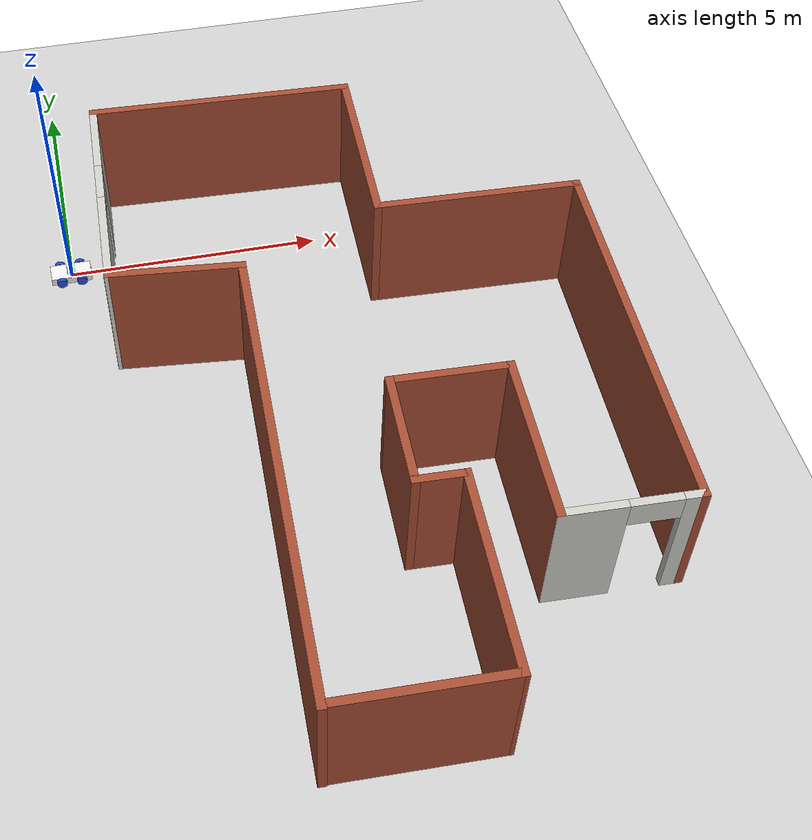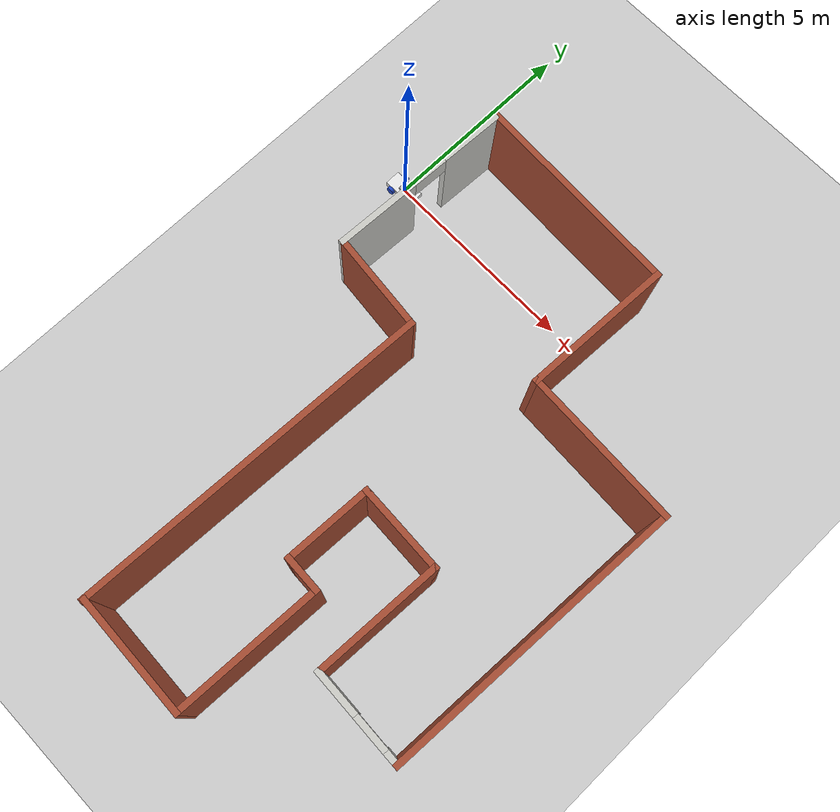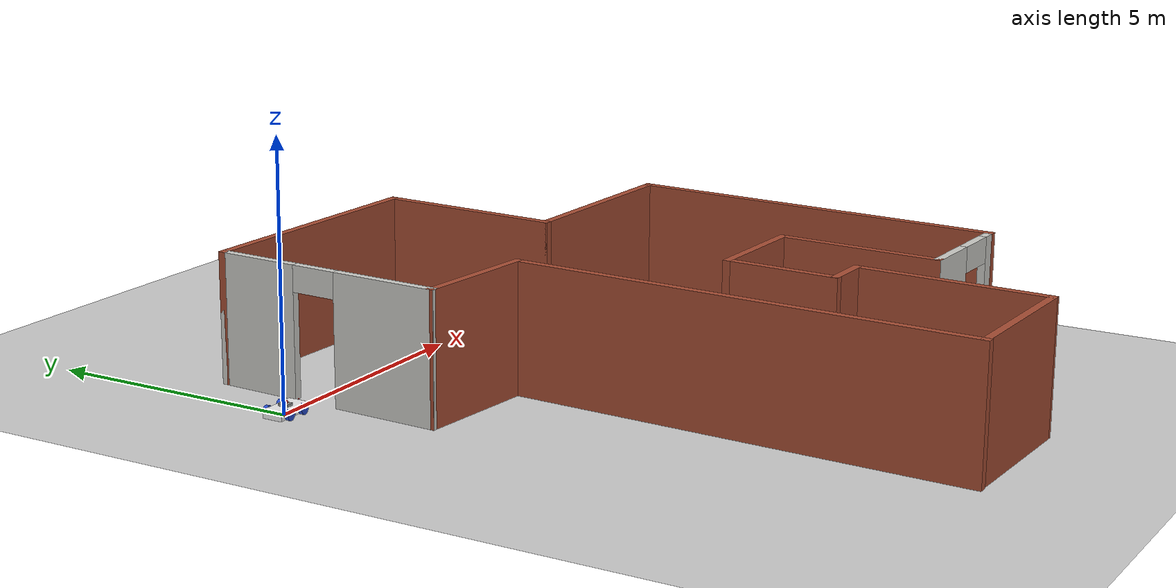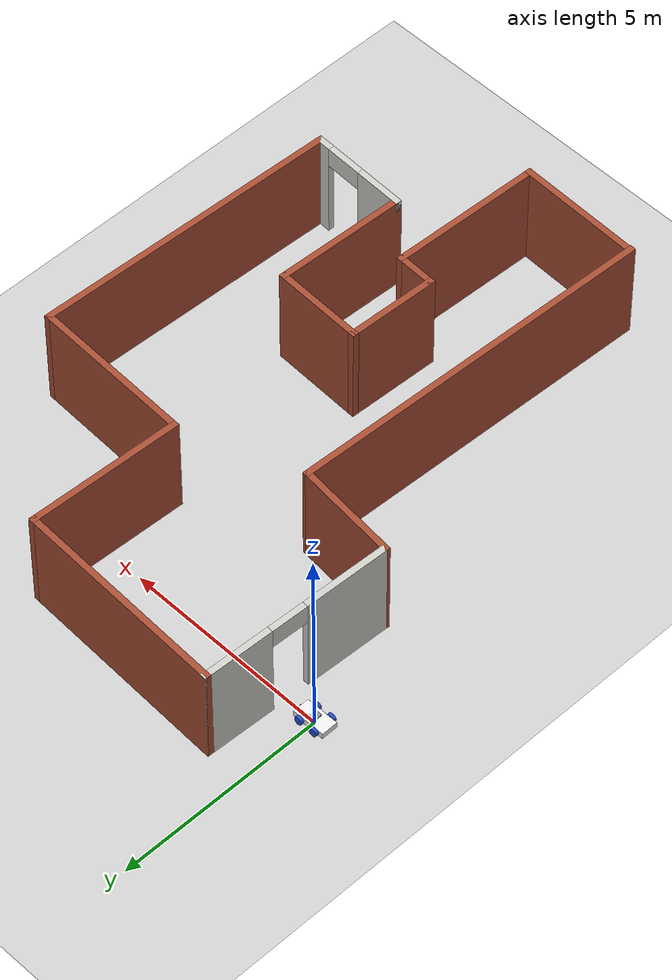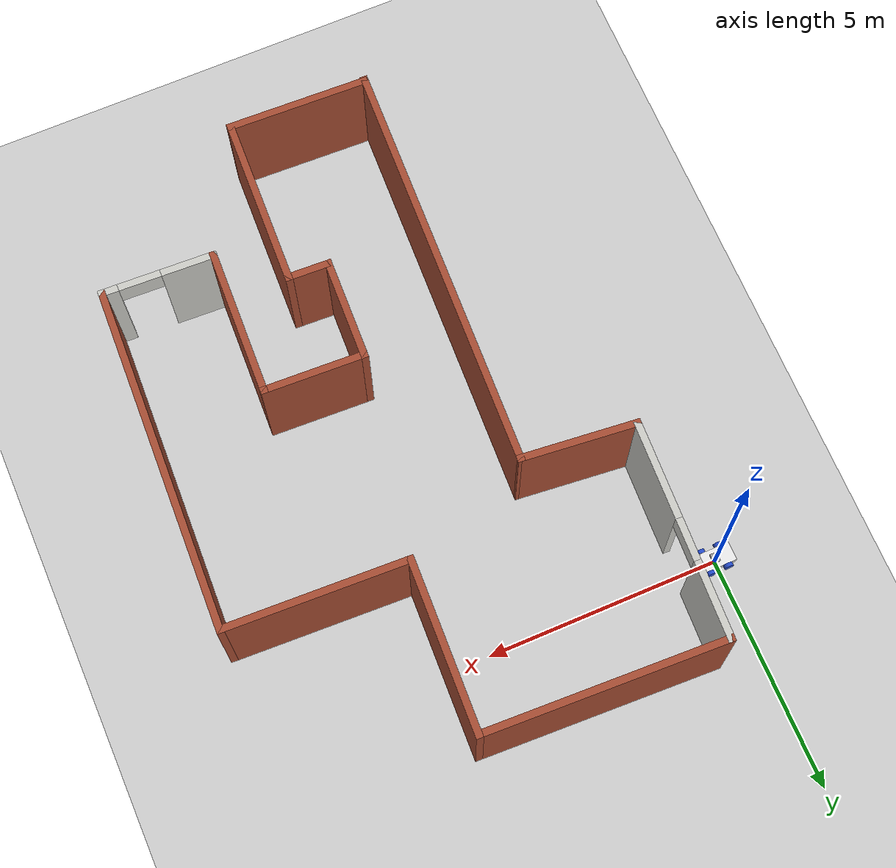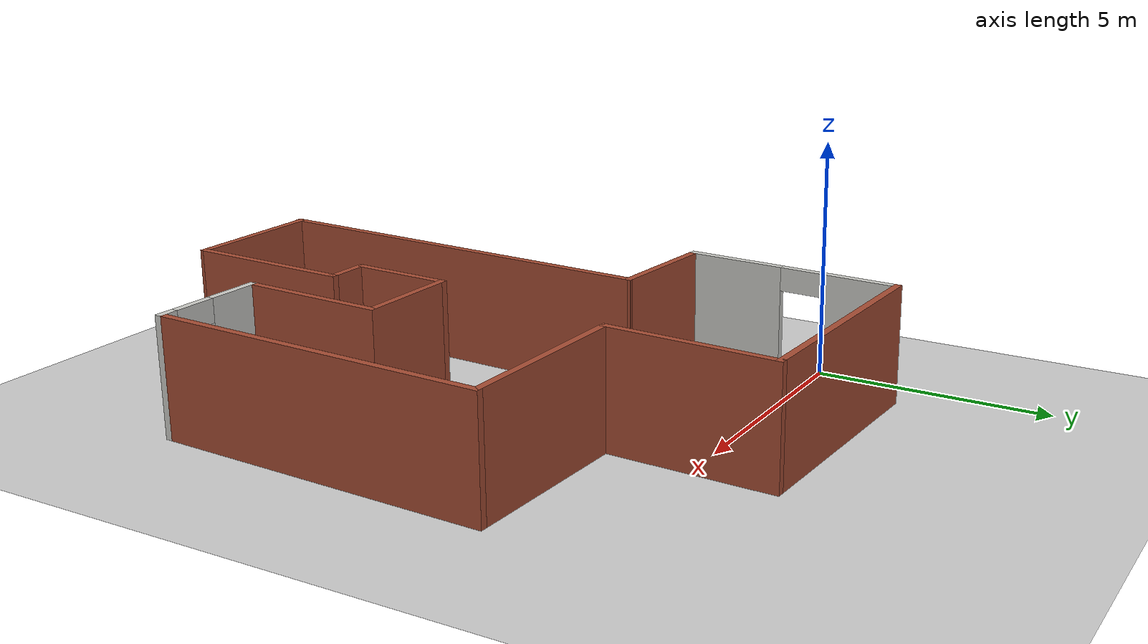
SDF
<sdf version="1.7">
 <world name="default">
  <light name="sun" type="directional">
   <pose>0 0 10 0 -0 0</pose>
   <diffuse>0.8 0.8 0.8 1</diffuse>
   <specular>0.2 0.2 0.2 1</specular>
   <attenuation>
    <range>1000</range>
    <constant>0.9</constant>
    <linear>0.01</linear>
    <quadratic>0.001</quadratic>
   </attenuation>
   <direction>-0.5 0.1 -0.9</direction>
   <spot><inner_angle>0</inner_angle><outer_angle>0</outer_angle><falloff>0</falloff></spot>
  </light>
  <model name="ground_plane">
   <static>1</static>
   <link name="link">
    <collision name="collision">
     <geometry><plane><normal>0 0 1</normal><size>100 100</size></plane></geometry>
     <surface><friction><ode><mu>100</mu><mu2>50</mu2></ode></friction></surface>
    </collision>
    <visual name="visual">
     <cast_shadows>0</cast_shadows>
     <geometry><plane><normal>0 0 1</normal><size>100 100</size></plane></geometry>
     <material>
      <script><uri>file://media/materials/scripts/gazebo.material</uri><name>Gazebo/Grey</name></script>
     </material>
    </visual>
   </link>
  </model>
  <gravity>0 0 -9.8</gravity>
  <magnetic_field>6e-06 2.3e-05 -4.2e-05</magnetic_field>
  <atmosphere type="adiabatic"/>
  <physics type="ode">
   <max_step_size>0.001</max_step_size>
   <real_time_factor>1</real_time_factor>
   <real_time_update_rate>1000</real_time_update_rate>
  </physics>
  <scene><ambient>0.4 0.4 0.4 1</ambient><background>0.7 0.7 0.7 1</background><shadows>1</shadows></scene>
  <audio><device>default</device></audio>
  <spherical_coordinates>
   <surface_model>EARTH_WGS84</surface_model>
   <latitude_deg>0</latitude_deg>
   <longitude_deg>0</longitude_deg>
   <elevation>0</elevation>
   <heading_deg>0</heading_deg>
  </spherical_coordinates>
  <model name="sim_robot">
   <link name="base_link">
    <inertial>
     <pose>0 0 0.03625 0 -0 0</pose>
     <mass>0.8</mass>
     <inertia>
      <ixx>0.0105471</ixx>
      <ixy>0</ixy>
      <ixz>0</ixz>
      <iyy>0.0300471</iyy>
      <iyz>0</iyz>
      <izz>0.0342917</izz>
     </inertia>
    </inertial>
    <collision name="base_link_fixed_joint_lump__chassis_collision">
     <geometry><box><size>0.8 0.4 0.15</size></box></geometry>
    </collision>
    <collision name="base_link_fixed_joint_lump__laser_frame_collision_1">
     <pose>0 0 0.14 0 -0 0</pose>
     <geometry><cylinder><length>0.04</length><radius>0.05</radius></cylinder></geometry>
    </collision>
    <collision name="base_link_fixed_joint_lump__smaller_box_collision_2">
     <pose>0 0 0.075 0 -0 0</pose>
     <geometry><box><size>0.1 0.2 0.1</size></box></geometry>
    </collision>
    <visual name="base_link_fixed_joint_lump__chassis_visual">
     <geometry><box><size>0.8 0.4 0.15</size></box></geometry>
     <material>
      <script><name>Gazebo/White</name><uri>file://media/materials/scripts/gazebo.material</uri></script>
     </material>
    </visual>
    <visual name="base_link_fixed_joint_lump__camera_link_visual_1">
     <pose>0.4 0 0.08 0 -0 0</pose>
     <geometry><box><size>0.01 0.03 0.03</size></box></geometry>
     <material>
      <script><name>Gazebo/Red</name><uri>file://media/materials/scripts/gazebo.material</uri></script>
     </material>
    </visual>
    <visual name="base_link_fixed_joint_lump__laser_frame_visual_2">
     <pose>0 0 0.14 0 -0 0</pose>
     <geometry><cylinder><length>0.04</length><radius>0.05</radius></cylinder></geometry>
     <material>
      <script><name>Gazebo/Red</name><uri>file://media/materials/scripts/gazebo.material</uri></script>
     </material>
    </visual>
    <visual name="base_link_fixed_joint_lump__smaller_box_visual_3">
     <pose>0 0 0.075 0 -0 0</pose>
     <geometry><box><size>0.15 0.2 0.1</size></box></geometry>
     <material>
      <script><name>Gazebo/Gray</name><uri>file://media/materials/scripts/gazebo.material</uri></script>
     </material>
    </visual>
    <sensor name="camera" type="camera">
     <visualize>1</visualize>
     <update_rate>10</update_rate>
     <camera>
      <horizontal_fov>1.089</horizontal_fov>
      <image><format>R8G8B8</format><width>640</width><height>480</height></image>
      <clip><near>0.05</near><far>8</far></clip>
     </camera>
     <plugin name="camera_controller" filename="libgazebo_ros_camera.so">
      <frame_name>camera_link_optical</frame_name>
     </plugin>
     <pose>0.4 0 0.08 0 -0 0</pose>
    </sensor>
    <sensor name="laser" type="ray">
     <visualize>1</visualize>
     <update_rate>10</update_rate>
     <ray>
      <scan>
       <horizontal>
        <samples>360</samples>
        <min_angle>-3.14</min_angle>
        <max_angle>3.14</max_angle>
        <resolution>1</resolution>
       </horizontal>
       <vertical><samples>1</samples><min_angle>0</min_angle><max_angle>0</max_angle></vertical>
      </scan>
      <range><min>0.3</min><max>12</max></range>
     </ray>
     <plugin name="laser_controller" filename="libgazebo_ros_ray_sensor.so">
      <ros><argument>~/out:=scan</argument></ros>
      <output_type>sensor_msgs/LaserScan</output_type>
      <frame_name>laser_frame</frame_name>
     </plugin>
     <pose>0 0 0.14 0 -0 0</pose>
    </sensor>
   </link>
   <joint name="front_left_wheel_joint" type="revolute">
    <pose relative_to="base_link">0.2 0.24 0 -1.5714 0 0</pose>
    <parent>base_link</parent>
    <child>front_left_wheel</child>
    <axis>
     <xyz>0 0 1</xyz>
     <limit><lower>-1e+16</lower><upper>1e+16</upper></limit>
     <dynamics><spring_reference>0</spring_reference><spring_stiffness>0</spring_stiffness></dynamics>
    </axis>
   </joint>
   <link name="front_left_wheel">
    <pose relative_to="front_left_wheel_joint">0 0 0 0 -0 0</pose>
    <inertial>
     <mass>0.1</mass>
     <inertia>
      <ixx>0.000303333</ixx>
      <ixy>0</ixy>
      <ixz>0</ixz>
      <iyy>0.000303333</iyy>
      <iyz>0</iyz>
      <izz>0.0005</izz>
     </inertia>
    </inertial>
    <collision name="front_left_wheel_collision">
     <geometry><cylinder><length>0.08</length><radius>0.1</radius></cylinder></geometry>
    </collision>
    <visual name="front_left_wheel_visual">
     <geometry><cylinder><length>0.08</length><radius>0.1</radius></cylinder></geometry>
     <material>
      <script><name>Gazebo/Blue</name><uri>file://media/materials/scripts/gazebo.material</uri></script>
     </material>
    </visual>
   </link>
   <joint name="front_right_wheel_joint" type="revolute">
    <pose relative_to="base_link">0.2 -0.24 0 1.5714 -0 0</pose>
    <parent>base_link</parent>
    <child>front_right_wheel</child>
    <axis>
     <xyz>0 0 -1</xyz>
     <limit><lower>-1e+16</lower><upper>1e+16</upper></limit>
     <dynamics><spring_reference>0</spring_reference><spring_stiffness>0</spring_stiffness></dynamics>
    </axis>
   </joint>
   <link name="front_right_wheel">
    <pose relative_to="front_right_wheel_joint">0 0 0 0 -0 0</pose>
    <inertial>
     <mass>0.1</mass>
     <inertia>
      <ixx>0.000303333</ixx>
      <ixy>0</ixy>
      <ixz>0</ixz>
      <iyy>0.000303333</iyy>
      <iyz>0</iyz>
      <izz>0.0005</izz>
     </inertia>
    </inertial>
    <collision name="front_right_wheel_collision">
     <geometry><cylinder><length>0.08</length><radius>0.1</radius></cylinder></geometry>
    </collision>
    <visual name="front_right_wheel_visual">
     <geometry><cylinder><length>0.08</length><radius>0.1</radius></cylinder></geometry>
     <material>
      <script><name>Gazebo/Blue</name><uri>file://media/materials/scripts/gazebo.material</uri></script>
     </material>
    </visual>
   </link>
   <joint name="rear_left_wheel_joint" type="revolute">
    <pose relative_to="base_link">-0.2 0.24 0 -1.5714 0 0</pose>
    <parent>base_link</parent>
    <child>rear_left_wheel</child>
    <axis>
     <xyz>0 0 1</xyz>
     <limit><lower>-1e+16</lower><upper>1e+16</upper></limit>
     <dynamics><spring_reference>0</spring_reference><spring_stiffness>0</spring_stiffness></dynamics>
    </axis>
   </joint>
   <link name="rear_left_wheel">
    <pose relative_to="rear_left_wheel_joint">0 0 0 0 -0 0</pose>
    <inertial>
     <mass>0.1</mass>
     <inertia>
      <ixx>0.000303333</ixx>
      <ixy>0</ixy>
      <ixz>0</ixz>
      <iyy>0.000303333</iyy>
      <iyz>0</iyz>
      <izz>0.0005</izz>
     </inertia>
    </inertial>
    <collision name="rear_left_wheel_collision">
     <geometry><cylinder><length>0.08</length><radius>0.1</radius></cylinder></geometry>
    </collision>
    <visual name="rear_left_wheel_visual">
     <geometry><cylinder><length>0.08</length><radius>0.1</radius></cylinder></geometry>
     <material>
      <script><name>Gazebo/Blue</name><uri>file://media/materials/scripts/gazebo.material</uri></script>
     </material>
    </visual>
   </link>
   <joint name="rear_right_wheel_joint" type="revolute">
    <pose relative_to="base_link">-0.2 -0.24 0 1.5714 -0 0</pose>
    <parent>base_link</parent>
    <child>rear_right_wheel</child>
    <axis>
     <xyz>0 0 -1</xyz>
     <limit><lower>-1e+16</lower><upper>1e+16</upper></limit>
     <dynamics><spring_reference>0</spring_reference><spring_stiffness>0</spring_stiffness></dynamics>
    </axis>
   </joint>
   <link name="rear_right_wheel">
    <pose relative_to="rear_right_wheel_joint">0 0 0 0 -0 0</pose>
    <inertial>
     <mass>0.1</mass>
     <inertia>
      <ixx>0.000303333</ixx>
      <ixy>0</ixy>
      <ixz>0</ixz>
      <iyy>0.000303333</iyy>
      <iyz>0</iyz>
      <izz>0.0005</izz>
     </inertia>
    </inertial>
    <collision name="rear_right_wheel_collision">
     <geometry><cylinder><length>0.08</length><radius>0.1</radius></cylinder></geometry>
    </collision>
    <visual name="rear_right_wheel_visual">
     <geometry><cylinder><length>0.08</length><radius>0.1</radius></cylinder></geometry>
     <material>
      <script><name>Gazebo/Blue</name><uri>file://media/materials/scripts/gazebo.material</uri></script>
     </material>
    </visual>
   </link>
   <static>0</static>
   <plugin name="skid_steer_drive" filename="libgazebo_ros_diff_drive.so">
    <update_rate>500</update_rate>
    <num_wheel_pairs>2</num_wheel_pairs>
    <left_joint>front_left_wheel_joint</left_joint>
    <right_joint>front_right_wheel_joint</right_joint>
    <left_joint>rear_left_wheel_joint</left_joint>
    <right_joint>rear_right_wheel_joint</right_joint>
    <wheel_separation>0.48</wheel_separation>
    <wheel_separation>0.48</wheel_separation>
    <wheel_diameter>0.2</wheel_diameter>
    <wheel_diameter>0.2</wheel_diameter>
    <max_wheel_torque>200</max_wheel_torque>
    <max_wheel_acceleration>10.0</max_wheel_acceleration>
    <publish_odom>1</publish_odom>
    <publish_odom_tf>1</publish_odom_tf>
    <publish_wheel_tf>1</publish_wheel_tf>
    <odometry_frame>odom</odometry_frame>
    <robot_base_frame>base_link</robot_base_frame>
   </plugin>
   <pose>0.00099 -0.030668 0.100024 0 1e-06 0.014823</pose>
  </model>
  <model name="maze">
   <pose>5.12099 -5.01273 0 0 0 -1.61081</pose>
   <link name="Wall_0">
    <collision name="Wall_0_Collision">
     <geometry><box><size>9 0.15 2.5</size></box></geometry>
     <pose>0 0 1.25 0 -0 0</pose>
    </collision>
    <visual name="Wall_0_Visual">
     <pose>0 0 1.25 0 -0 0</pose>
     <geometry><box><size>9 0.15 2.5</size></box></geometry>
     <material>
      <script><uri>file://media/materials/scripts/gazebo.material</uri><name>Gazebo/Bricks</name></script>
      <ambient>1 1 1 1</ambient>
     </material>
     <meta><layer>0</layer></meta>
    </visual>
    <pose>2.37011 -2.07344 0 0 -0 0</pose>
   </link>
   <link name="Wall_1">
    <collision name="Wall_1_Collision">
     <geometry><box><size>3.08052 0.15 2.5</size></box></geometry>
     <pose>0 0 1.25 0 -0 0</pose>
    </collision>
    <visual name="Wall_1_Visual">
     <pose>0 0 1.25 0 -0 0</pose>
     <geometry><box><size>3.08052 0.15 2.5</size></box></geometry>
     <material>
      <script><uri>file://media/materials/scripts/gazebo.material</uri><name>Gazebo/Bricks</name></script>
      <ambient>1 1 1 1</ambient>
     </material>
     <meta><layer>0</layer></meta>
    </visual>
    <pose>6.76494 -0.588103 0 0 -0 1.57766</pose>
   </link>
   <link name="Wall_10">
    <collision name="Wall_10_Collision">
     <geometry><box><size>4 0.15 2.5</size></box></geometry>
     <pose>0 0 1.25 0 -0 0</pose>
    </collision>
    <visual name="Wall_10_Visual">
     <pose>0 0 1.25 0 -0 0</pose>
     <geometry><box><size>4 0.15 2.5</size></box></geometry>
     <material>
      <script><uri>file://media/materials/scripts/gazebo.material</uri><name>Gazebo/Bricks</name></script>
      <ambient>1 1 1 1</ambient>
     </material>
     <meta><layer>0</layer></meta>
    </visual>
    <pose>-3.19511 2.55212 0 0 -0 -1.5708</pose>
   </link>
   <link name="Wall_11">
    <collision name="Wall_11_Collision">
     <geometry><box><size>3.75 0.15 2.5</size></box></geometry>
     <pose>0 0 1.25 0 -0 0</pose>
    </collision>
    <visual name="Wall_11_Visual">
     <pose>0 0 1.25 0 -0 0</pose>
     <geometry><box><size>3.75 0.15 2.5</size></box></geometry>
     <material>
      <script><uri>file://media/materials/scripts/gazebo.material</uri><name>Gazebo/Bricks</name></script>
      <ambient>1 1 1 1</ambient>
     </material>
     <meta><layer>0</layer></meta>
    </visual>
    <pose>-4.99511 0.627124 0 0 -0 3.14159</pose>
   </link>
   <link name="Wall_12">
    <collision name="Wall_12_Collision">
     <geometry><box><size>5.25 0.15 2.5</size></box></geometry>
     <pose>0 0 1.25 0 -0 0</pose>
    </collision>
    <visual name="Wall_12_Visual">
     <pose>0 0 1.25 0 -0 0</pose>
     <geometry><box><size>5.25 0.15 2.5</size></box></geometry>
     <material>
      <script><uri>file://media/materials/scripts/gazebo.material</uri><name>Gazebo/Bricks</name></script>
      <ambient>1 1 1 1</ambient>
     </material>
     <meta><layer>0</layer></meta>
    </visual>
    <pose>-6.79511 -1.92288 0 0 -0 -1.5708</pose>
   </link>
   <link name="Wall_13">
    <pose>-4.49511 -4.47288 0 0 -0 0</pose>
    <visual name="Wall_13_Visual_0">
     <pose>-1.52365 0 1.25 0 -0 0</pose>
     <geometry><box><size>1.70271 0.15 2.5</size></box></geometry>
     <material>
      <script><uri>file://media/materials/scripts/gazebo.material</uri><name>Gazebo/CeilingTiled</name></script>
      <ambient>0.996078 0.47451 0.0196078 1</ambient>
     </material>
     <meta><layer>0</layer></meta>
    </visual>
    <collision name="Wall_13_Collision_0">
     <geometry><box><size>1.70271 0.15 2.5</size></box></geometry>
     <pose>-1.52365 0 1.25 0 -0 0</pose>
    </collision>
    <visual name="Wall_13_Visual_1">
     <pose>1.30135 0 1.25 0 -0 0</pose>
     <geometry><box><size>2.14729 0.15 2.5</size></box></geometry>
     <material>
      <script><uri>file://media/materials/scripts/gazebo.material</uri><name>Gazebo/CeilingTiled</name></script>
      <ambient>0.996078 0.47451 0.0196078 1</ambient>
     </material>
     <meta><layer>0</layer></meta>
    </visual>
    <collision name="Wall_13_Collision_1">
     <geometry><box><size>2.14729 0.15 2.5</size></box></geometry>
     <pose>1.30135 0 1.25 0 -0 0</pose>
    </collision>
    <visual name="Wall_13_Visual_2">
     <pose>-0.222293 0 2.25 0 -0 0</pose>
     <geometry><box><size>0.9 0.15 0.5</size></box></geometry>
     <material>
      <script><uri>file://media/materials/scripts/gazebo.material</uri><name>Gazebo/CeilingTiled</name></script>
      <ambient>0.996078 0.47451 0.0196078 1</ambient>
     </material>
     <meta><layer>0</layer></meta>
    </visual>
    <collision name="Wall_13_Collision_2">
     <geometry><box><size>0.9 0.15 0.5</size></box></geometry>
     <pose>-0.222293 0 2.25 0 -0 0</pose>
    </collision>
   </link>
   <link name="Wall_14">
    <collision name="Wall_14_Collision">
     <geometry><box><size>2.55353 0.15 2.5</size></box></geometry>
     <pose>0 0 1.25 0 -0 0</pose>
    </collision>
    <visual name="Wall_14_Visual">
     <pose>0 0 1.25 0 -0 0</pose>
     <geometry><box><size>2.55353 0.15 2.5</size></box></geometry>
     <material>
      <script><uri>file://media/materials/scripts/gazebo.material</uri><name>Gazebo/Bricks</name></script>
      <ambient>1 1 1 1</ambient>
     </material>
     <meta><layer>0</layer></meta>
    </visual>
    <pose>-2.125 -3.27316 0 0 -0 1.51242</pose>
   </link>
   <link name="Wall_2">
    <collision name="Wall_2_Collision">
     <geometry><box><size>3.75 0.15 2.5</size></box></geometry>
     <pose>0 0 1.25 0 -0 0</pose>
    </collision>
    <visual name="Wall_2_Visual">
     <pose>0 0 1.25 0 -0 0</pose>
     <geometry><box><size>3.75 0.15 2.5</size></box></geometry>
     <material>
      <script><uri>file://media/materials/scripts/gazebo.material</uri><name>Gazebo/Bricks</name></script>
      <ambient>1 1 1 1</ambient>
     </material>
     <meta><layer>0</layer></meta>
    </visual>
    <pose>4.95489 0.877124 0 0 -0 3.14159</pose>
   </link>
   <link name="Wall_4">
    <collision name="Wall_4_Collision">
     <geometry><box><size>1 0.15 2.5</size></box></geometry>
     <pose>0 0 1.25 0 -0 0</pose>
    </collision>
    <visual name="Wall_4_Visual">
     <pose>0 0 1.25 0 -0 0</pose>
     <geometry><box><size>1 0.15 2.5</size></box></geometry>
     <material>
      <script><uri>file://media/materials/scripts/gazebo.material</uri><name>Gazebo/Bricks</name></script>
      <ambient>1 1 1 1</ambient>
     </material>
     <meta><layer>0</layer></meta>
    </visual>
    <pose>3.15489 0.452124 0 0 -0 -1.5708</pose>
   </link>
   <link name="Wall_5">
    <collision name="Wall_5_Collision">
     <geometry><box><size>2.25 0.15 2.5</size></box></geometry>
     <pose>0 0 1.25 0 -0 0</pose>
    </collision>
    <visual name="Wall_5_Visual">
     <pose>0 0 1.25 0 -0 0</pose>
     <geometry><box><size>2.25 0.15 2.5</size></box></geometry>
     <material>
      <script><uri>file://media/materials/scripts/gazebo.material</uri><name>Gazebo/Bricks</name></script>
      <ambient>1 1 1 1</ambient>
     </material>
     <meta><layer>0</layer></meta>
    </visual>
    <pose>2.10489 0.027124 0 0 -0 3.14159</pose>
   </link>
   <link name="Wall_6">
    <collision name="Wall_6_Collision">
     <geometry><box><size>2.25 0.15 2.5</size></box></geometry>
     <pose>0 0 1.25 0 -0 0</pose>
    </collision>
    <visual name="Wall_6_Visual">
     <pose>0 0 1.25 0 -0 0</pose>
     <geometry><box><size>2.25 0.15 2.5</size></box></geometry>
     <material>
      <script><uri>file://media/materials/scripts/gazebo.material</uri><name>Gazebo/Bricks</name></script>
      <ambient>1 1 1 1</ambient>
     </material>
     <meta><layer>0</layer></meta>
    </visual>
    <pose>1.05489 1.07712 0 0 -0 1.5708</pose>
   </link>
   <link name="Wall_7">
    <collision name="Wall_7_Collision">
     <geometry><box><size>3.25 0.15 2.5</size></box></geometry>
     <pose>0 0 1.25 0 -0 0</pose>
    </collision>
    <visual name="Wall_7_Visual">
     <pose>0 0 1.25 0 -0 0</pose>
     <geometry><box><size>3.25 0.15 2.5</size></box></geometry>
     <material>
      <script><uri>file://media/materials/scripts/gazebo.material</uri><name>Gazebo/Bricks</name></script>
      <ambient>1 1 1 1</ambient>
     </material>
     <meta><layer>0</layer></meta>
    </visual>
    <pose>2.60489 2.12712 0 0 -0 0</pose>
   </link>
   <link name="Wall_8">
    <pose>4.15489 3.30212 0 0 -0 1.5708</pose>
    <visual name="Wall_8_Visual_0">
     <pose>-0.655324 0 1.25 0 -0 0</pose>
     <geometry><box><size>1.18935 0.15 2.5</size></box></geometry>
     <material>
      <script><uri>file://media/materials/scripts/gazebo.material</uri><name>Gazebo/CeilingTiled</name></script>
      <ambient>0.996078 0.47451 0.0196078 1</ambient>
     </material>
     <meta><layer>0</layer></meta>
    </visual>
    <collision name="Wall_8_Collision_0">
     <geometry><box><size>1.18935 0.15 2.5</size></box></geometry>
     <pose>-0.655324 0 1.25 0 -0 0</pose>
    </collision>
    <visual name="Wall_8_Visual_1">
     <pose>1.04468 0 1.25 0 -0 0</pose>
     <geometry><box><size>0.410647 0.15 2.5</size></box></geometry>
     <material>
      <script><uri>file://media/materials/scripts/gazebo.material</uri><name>Gazebo/CeilingTiled</name></script>
      <ambient>0.996078 0.47451 0.0196078 1</ambient>
     </material>
     <meta><layer>0</layer></meta>
    </visual>
    <collision name="Wall_8_Collision_1">
     <geometry><box><size>0.410647 0.15 2.5</size></box></geometry>
     <pose>1.04468 0 1.25 0 -0 0</pose>
    </collision>
    <visual name="Wall_8_Visual_2">
     <pose>0.389353 0 2.25 0 -0 0</pose>
     <geometry><box><size>0.9 0.15 0.5</size></box></geometry>
     <material>
      <script><uri>file://media/materials/scripts/gazebo.material</uri><name>Gazebo/CeilingTiled</name></script>
      <ambient>0.996078 0.47451 0.0196078 1</ambient>
     </material>
     <meta><layer>0</layer></meta>
    </visual>
    <collision name="Wall_8_Collision_2">
     <geometry><box><size>0.9 0.15 0.5</size></box></geometry>
     <pose>0.389353 0 2.25 0 -0 0</pose>
    </collision>
   </link>
   <link name="Wall_9">
    <collision name="Wall_9_Collision">
     <geometry><box><size>7.5 0.15 2.5</size></box></geometry>
     <pose>0 0 1.25 0 -0 0</pose>
    </collision>
    <visual name="Wall_9_Visual">
     <pose>0 0 1.25 0 -0 0</pose>
     <geometry><box><size>7.5 0.15 2.5</size></box></geometry>
     <material>
      <script><uri>file://media/materials/scripts/gazebo.material</uri><name>Gazebo/Bricks</name></script>
      <ambient>1 1 1 1</ambient>
     </material>
     <meta><layer>0</layer></meta>
    </visual>
    <pose>0.479887 4.47712 0 0 -0 3.14159</pose>
   </link>
   <static>1</static>
  </model>
 </world>
</sdf>
